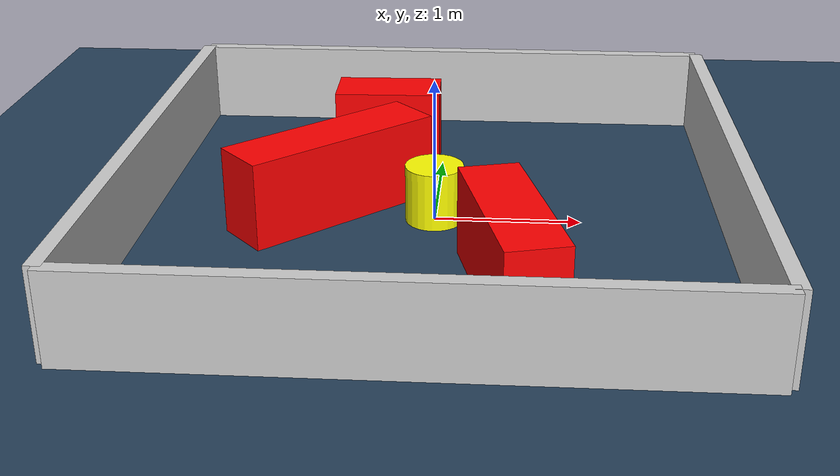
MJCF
<?xml version="1.0" ?>
<mujoco model="generated_environment">
  <option timestep="0.01" integrator="RK4" cone="elliptic"/>
  <default>
    <geom density="1"/>
  </default>
  <asset>
    <texture builtin="gradient" height="3072" rgb1="0.3 0.5 0.7" rgb2="0 0 0" type="skybox" width="512"/>
    <texture builtin="checker" height="300" mark="edge" markrgb="0.8 0.8 0.8" name="groundplane" rgb1="0.2 0.3 0.4" rgb2="0.1 0.2 0.3" type="2d" width="300"/>
    <material name="groundplane" reflectance="0.2" texrepeat="5 5" texture="groundplane" texuniform="true"/>
    <material name="robot" rgba="0.0 1.0 0.0 1"/>
  </asset>
  <worldbody>
    <light dir="0 0 -1" directional="true" pos="0 0 1.5"/>
    <geom condim="4" friction="1.0 0.005 0.001" material="groundplane" name="floor" size="0 0 0.05" type="plane"/>
    <body name="walls">
      <geom name="wall_1" condim="4" pos="-2.0 0.0 0.3" rgba="0.800000011920929 0.800000011920929 0.800000011920929 1.0" size="0.05 2.0 0.3" type="box"/>
      <geom name="wall_2" condim="4" pos="2.0 0.0 0.3" rgba="0.800000011920929 0.800000011920929 0.800000011920929 1.0" size="0.05 2.0 0.3" type="box"/>
      <geom name="wall_3" condim="4" pos="0.0 -2.0 0.3" rgba="0.800000011920929 0.800000011920929 0.800000011920929 1.0" size="2.0 0.05 0.3" type="box"/>
      <geom name="wall_4" condim="4" pos="0.0 2.0 0.3" rgba="0.800000011920929 0.800000011920929 0.800000011920929 1.0" size="2.0 0.05 0.3" type="box"/>
    </body>
    <body name="robot">
      <joint name="joint_x" type="slide" pos="0 0 0" axis="1 0 0"/>
      <joint name="joint_y" type="slide" pos="0 0 0" axis="0 1 0"/>
      <geom name="robot" type="sphere" pos="0.3 0.0 0.2" size="0.05" mass="5." friction="1.0 0.005 0.0001" condim="4" rgba="0.5 0.5 0.5 1.0"/>
      <site name="sensor_ball"/>
    </body>
    <body name="obstacle_movable_1">
      <geom name="obstacle_movable_1" condim="4" pos="0.0 0.0 0.2" euler="0 0 0.0" friction="1.0 0.005 0.001" rgba="1.0 1.0 0.0 1.0" size="0.2 0.2 0.0" type="cylinder" mass="0.1"/>
      <joint type="free"/>
    </body>
    <body name="obstacle_2_static">
      <geom name="obstacle_2_static" condim="4" pos="0.525093324082643 -1.0411197288337646 0.3" euler="0 0 284.5324500908387" friction="1.0 0.005 0.001" rgba="1 0 0 1" size="0.6086110388395871 0.2 0.3" type="box"/>
    </body>
    <body name="obstacle_3_static">
      <geom name="obstacle_3_static" condim="4" pos="-0.7180968152103187 0.0692258340189853 0.3" euler="0 0 42.77190348602122" friction="1.0 0.005 0.001" rgba="1 0 0 1" size="0.7268682766123649 0.2 0.3" type="box"/>
    </body>
    <body name="obstacle_4_static">
      <geom name="obstacle_4_static" condim="4" pos="-0.4079814713075789 1.0425493843906624 0.3" euler="0 0 1.3063219643638924" friction="1.0 0.005 0.001" rgba="1 0 0 1" size="0.38478996835052615 0.2 0.3" type="box"/>
    </body>
  </worldbody>
  <actuator>
    <motor name="actuator_x" joint="joint_x" gear="1" ctrlrange="-1 1"/>
    <motor name="actuator_y" joint="joint_y" gear="1" ctrlrange="-1 1"/>
  </actuator>
</mujoco>
